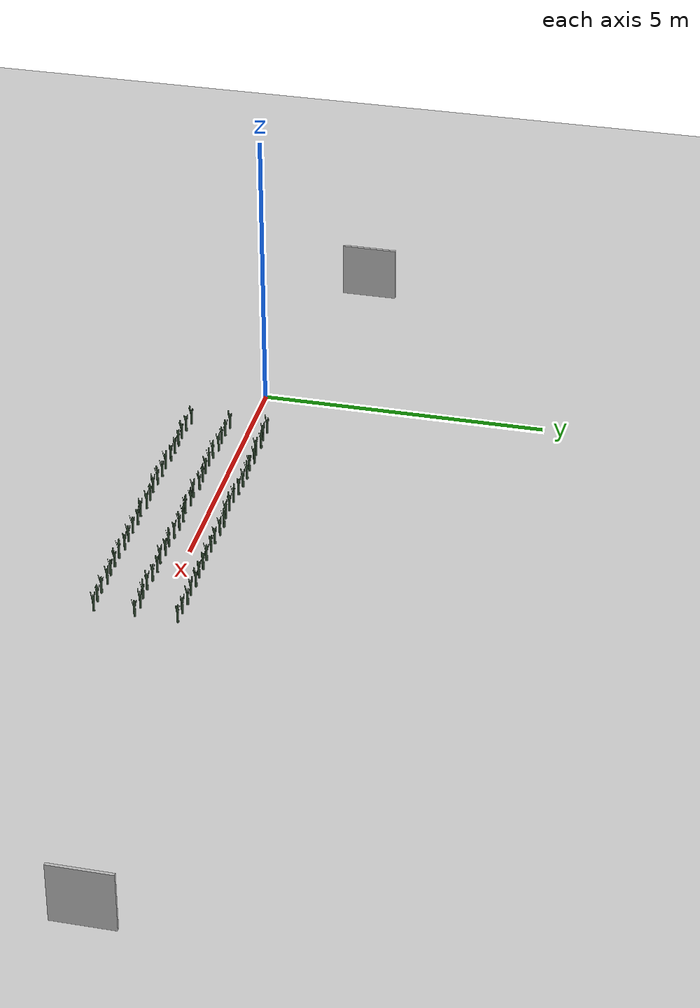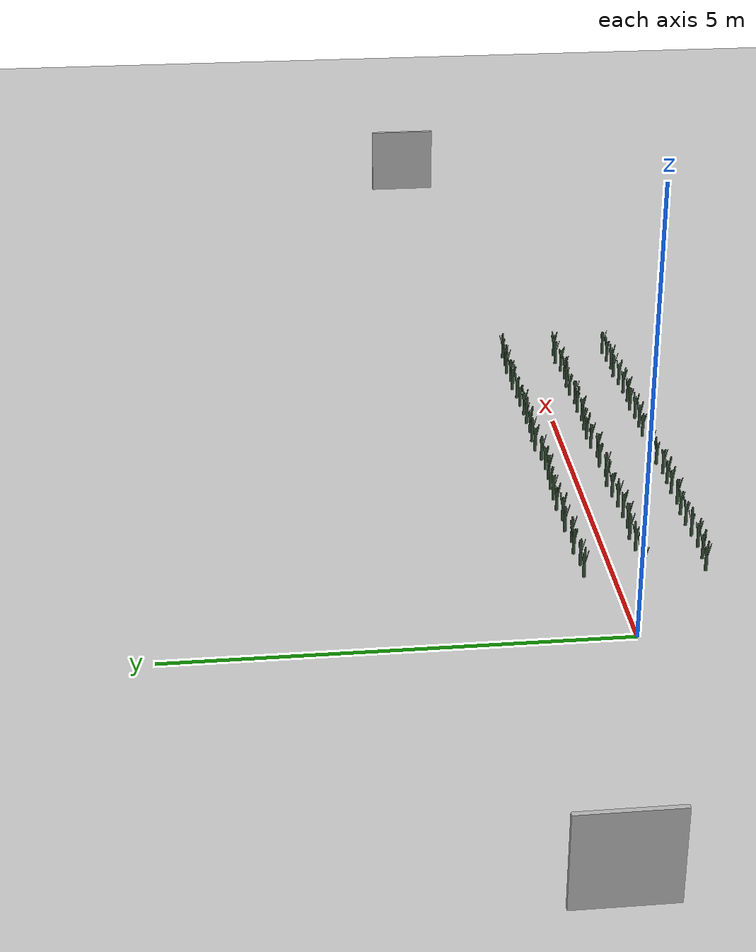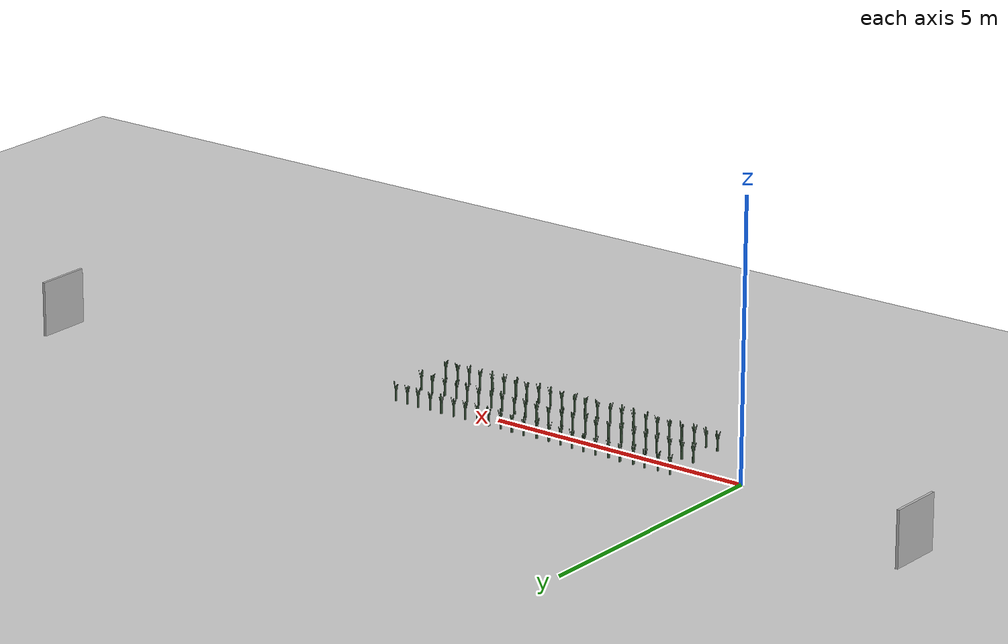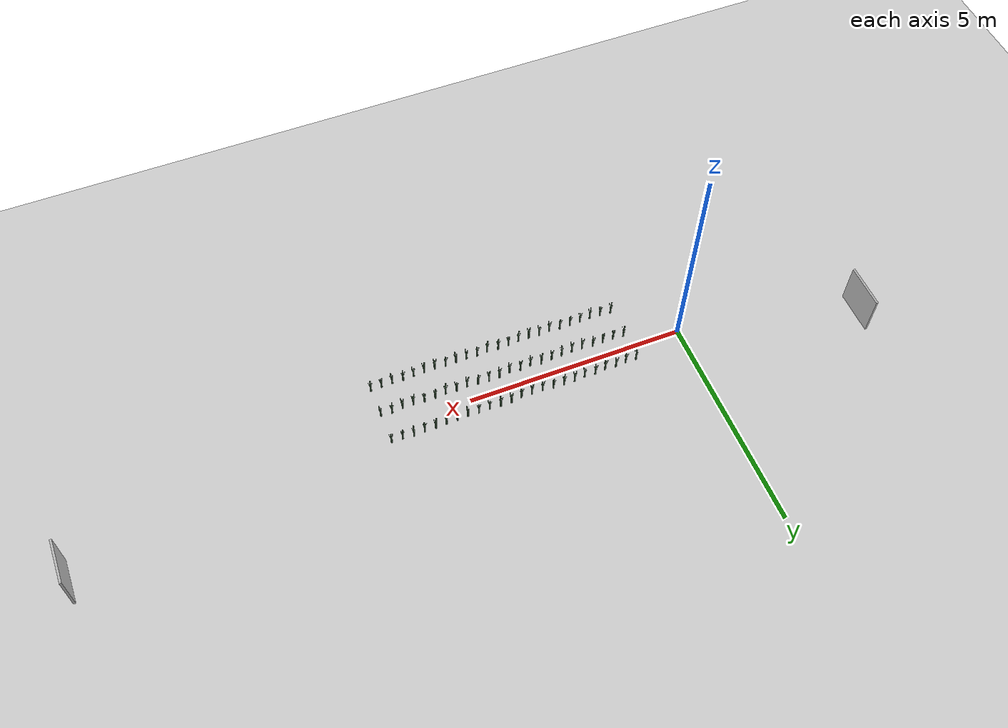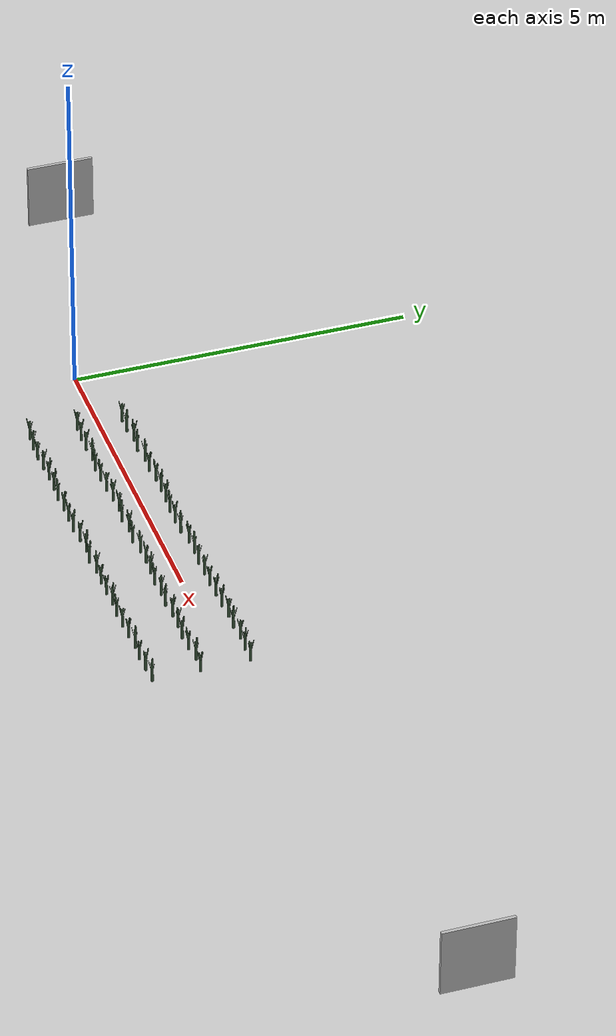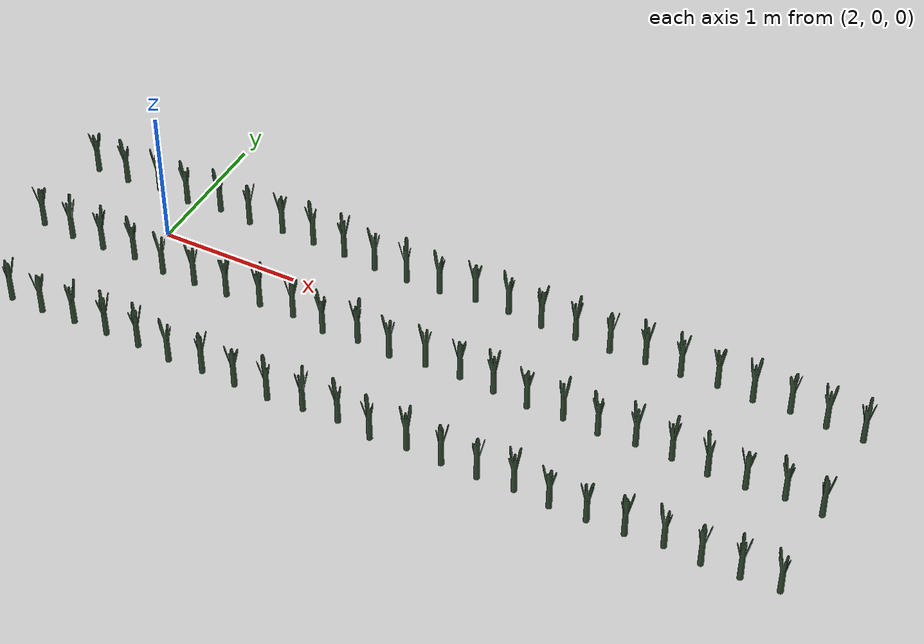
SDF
<sdf version="1.6">
 <world name="default">
  <light name="sun" type="directional">
   <pose>0 0 10 0 -0 0</pose>
   <diffuse>0.8 0.8 0.8 1</diffuse>
   <specular>0.1 0.1 0.1 1</specular>
   <attenuation>
    <range>1000</range>
    <constant>0.9</constant>
    <linear>0.01</linear>
    <quadratic>0.001</quadratic>
   </attenuation>
   <direction>0.9 0.5 -1</direction>
  </light>
  <include><uri>model://Sign</uri><pose>14 1 0 0 0 0</pose><static>1</static></include>
  <include><uri>model://Sign</uri><pose>-4 1 0 0 0 0</pose><static>1</static></include>
  <include><uri>model://dirt_plane</uri></include>
  <scene><background>160 210 255 1</background><ambient>100 100 100 1</ambient></scene>
  <include><uri>model://Leek</uri><pose>1.200000 0.338886 0.15 0 0 -2.000557</pose><static>0</static></include>
  <include><uri>model://Leek</uri><pose>1.450000 0.330409 0.15 0 0 -3.526339</pose><static>0</static></include>
  <include><uri>model://Leek</uri><pose>1.700000 0.358641 0.15 0 0 1.555358</pose><static>0</static></include>
  <include><uri>model://Leek</uri><pose>1.950000 0.331009 0.15 0 0 -3.418419</pose><static>0</static></include>
  <include><uri>model://Leek</uri><pose>2.200000 0.366336 0.15 0 0 2.940562</pose><static>0</static></include>
  <include><uri>model://Leek</uri><pose>2.450000 0.344066 0.15 0 0 -1.068157</pose><static>0</static></include>
  <include><uri>model://Leek</uri><pose>2.700000 0.369907 0.15 0 0 3.583285</pose><static>0</static></include>
  <include><uri>model://Leek</uri><pose>2.950000 0.363969 0.15 0 0 2.514465</pose><static>0</static></include>
  <include><uri>model://Leek</uri><pose>3.200000 0.353965 0.15 0 0 0.713680</pose><static>0</static></include>
  <include><uri>model://Leek</uri><pose>3.450000 0.332829 0.15 0 0 -3.090739</pose><static>0</static></include>
  <include><uri>model://Leek</uri><pose>3.700000 0.326324 0.15 0 0 -4.261597</pose><static>0</static></include>
  <include><uri>model://Leek</uri><pose>3.950000 0.331267 0.15 0 0 -3.371994</pose><static>0</static></include>
  <include><uri>model://Leek</uri><pose>4.200000 0.369270 0.15 0 0 3.468661</pose><static>0</static></include>
  <include><uri>model://Leek</uri><pose>4.450000 0.365990 0.15 0 0 2.878176</pose><static>0</static></include>
  <include><uri>model://Leek</uri><pose>4.700000 0.346027 0.15 0 0 -0.715149</pose><static>0</static></include>
  <include><uri>model://Leek</uri><pose>4.950000 0.348661 0.15 0 0 -0.241050</pose><static>0</static></include>
  <include><uri>model://Leek</uri><pose>5.200000 0.342444 0.15 0 0 -1.360123</pose><static>0</static></include>
  <include><uri>model://Leek</uri><pose>5.450000 0.353684 0.15 0 0 0.663090</pose><static>0</static></include>
  <include><uri>model://Leek</uri><pose>5.700000 0.353330 0.15 0 0 0.599355</pose><static>0</static></include>
  <include><uri>model://Leek</uri><pose>5.950000 0.372394 0.15 0 0 4.030942</pose><static>0</static></include>
  <include><uri>model://Leek</uri><pose>6.200000 0.356390 0.15 0 0 1.150264</pose><static>0</static></include>
  <include><uri>model://Leek</uri><pose>6.450000 0.374756 0.15 0 0 4.456143</pose><static>0</static></include>
  <include><uri>model://Leek</uri><pose>6.700000 0.354872 0.15 0 0 0.876919</pose><static>0</static></include>
  <include><uri>model://Leek</uri><pose>6.950000 0.349598 0.15 0 0 -0.072319</pose><static>0</static></include>
  <include><uri>model://Leek</uri><pose>1.200000 -0.327328 0.15 0 0 4.080955</pose><static>0</static></include>
  <include><uri>model://Leek</uri><pose>1.450000 -0.348385 0.15 0 0 0.290648</pose><static>0</static></include>
  <include><uri>model://Leek</uri><pose>1.700000 -0.348921 0.15 0 0 0.194130</pose><static>0</static></include>
  <include><uri>model://Leek</uri><pose>1.950000 -0.334145 0.15 0 0 2.853854</pose><static>0</static></include>
  <include><uri>model://Leek</uri><pose>2.200000 -0.367420 0.15 0 0 -3.135557</pose><static>0</static></include>
  <include><uri>model://Leek</uri><pose>2.450000 -0.366059 0.15 0 0 -2.890631</pose><static>0</static></include>
  <include><uri>model://Leek</uri><pose>2.700000 -0.359777 0.15 0 0 -1.759937</pose><static>0</static></include>
  <include><uri>model://Leek</uri><pose>2.950000 -0.340859 0.15 0 0 1.645439</pose><static>0</static></include>
  <include><uri>model://Leek</uri><pose>3.200000 -0.328337 0.15 0 0 3.899380</pose><static>0</static></include>
  <include><uri>model://Leek</uri><pose>3.450000 -0.369237 0.15 0 0 -3.462667</pose><static>0</static></include>
  <include><uri>model://Leek</uri><pose>3.700000 -0.340744 0.15 0 0 1.666055</pose><static>0</static></include>
  <include><uri>model://Leek</uri><pose>3.950000 -0.367073 0.15 0 0 -3.073055</pose><static>0</static></include>
  <include><uri>model://Leek</uri><pose>4.200000 -0.332471 0.15 0 0 3.155154</pose><static>0</static></include>
  <include><uri>model://Leek</uri><pose>4.450000 -0.329115 0.15 0 0 3.759366</pose><static>0</static></include>
  <include><uri>model://Leek</uri><pose>4.700000 -0.344708 0.15 0 0 0.952526</pose><static>0</static></include>
  <include><uri>model://Leek</uri><pose>4.950000 -0.366003 0.15 0 0 -2.880613</pose><static>0</static></include>
  <include><uri>model://Leek</uri><pose>5.200000 -0.352672 0.15 0 0 -0.481009</pose><static>0</static></include>
  <include><uri>model://Leek</uri><pose>5.450000 -0.370241 0.15 0 0 -3.643353</pose><static>0</static></include>
  <include><uri>model://Leek</uri><pose>5.700000 -0.345881 0.15 0 0 0.741421</pose><static>0</static></include>
  <include><uri>model://Leek</uri><pose>5.950000 -0.351260 0.15 0 0 -0.226845</pose><static>0</static></include>
  <include><uri>model://Leek</uri><pose>6.200000 -0.372340 0.15 0 0 -4.021220</pose><static>0</static></include>
  <include><uri>model://Leek</uri><pose>6.450000 -0.365359 0.15 0 0 -2.764575</pose><static>0</static></include>
  <include><uri>model://Leek</uri><pose>6.700000 -0.335516 0.15 0 0 2.607167</pose><static>0</static></include>
  <include><uri>model://Leek</uri><pose>6.950000 -0.356754 0.15 0 0 -1.215773</pose><static>0</static></include>
  <include><uri>model://Leek</uri><pose>1.200000 -1.027401 0.15 0 0 4.067773</pose><static>0</static></include>
  <include><uri>model://Leek</uri><pose>1.450000 -1.053913 0.15 0 0 -0.704283</pose><static>0</static></include>
  <include><uri>model://Leek</uri><pose>1.700000 -1.062691 0.15 0 0 -2.284462</pose><static>0</static></include>
  <include><uri>model://Leek</uri><pose>1.950000 -1.050883 0.15 0 0 -0.159000</pose><static>0</static></include>
  <include><uri>model://Leek</uri><pose>2.200000 -1.045802 0.15 0 0 0.755718</pose><static>0</static></include>
  <include><uri>model://Leek</uri><pose>2.450000 -1.046028 0.15 0 0 0.715011</pose><static>0</static></include>
  <include><uri>model://Leek</uri><pose>2.700000 -1.067697 0.15 0 0 -3.185429</pose><static>0</static></include>
  <include><uri>model://Leek</uri><pose>2.950000 -1.055246 0.15 0 0 -0.944354</pose><static>0</static></include>
  <include><uri>model://Leek</uri><pose>3.200000 -1.064250 0.15 0 0 -2.565077</pose><static>0</static></include>
  <include><uri>model://Leek</uri><pose>3.450000 -1.071708 0.15 0 0 -3.907383</pose><static>0</static></include>
  <include><uri>model://Leek</uri><pose>3.700000 -1.048773 0.15 0 0 0.220819</pose><static>0</static></include>
  <include><uri>model://Leek</uri><pose>3.950000 -1.035815 0.15 0 0 2.553298</pose><static>0</static></include>
  <include><uri>model://Leek</uri><pose>4.200000 -1.071525 0.15 0 0 -3.874565</pose><static>0</static></include>
  <include><uri>model://Leek</uri><pose>4.450000 -1.042524 0.15 0 0 1.345623</pose><static>0</static></include>
  <include><uri>model://Leek</uri><pose>4.700000 -1.056296 0.15 0 0 -1.133334</pose><static>0</static></include>
  <include><uri>model://Leek</uri><pose>4.950000 -1.057578 0.15 0 0 -1.364050</pose><static>0</static></include>
  <include><uri>model://Leek</uri><pose>5.200000 -1.044492 0.15 0 0 0.991394</pose><static>0</static></include>
  <include><uri>model://Leek</uri><pose>5.450000 -1.066626 0.15 0 0 -2.992668</pose><static>0</static></include>
  <include><uri>model://Leek</uri><pose>5.700000 -1.062788 0.15 0 0 -2.301794</pose><static>0</static></include>
  <include><uri>model://Leek</uri><pose>5.950000 -1.055455 0.15 0 0 -0.981967</pose><static>0</static></include>
  <include><uri>model://Leek</uri><pose>6.200000 -1.034433 0.15 0 0 2.802049</pose><static>0</static></include>
  <include><uri>model://Leek</uri><pose>6.450000 -1.057870 0.15 0 0 -1.416641</pose><static>0</static></include>
  <include><uri>model://Leek</uri><pose>6.700000 -1.048015 0.15 0 0 0.357308</pose><static>0</static></include>
  <include><uri>model://Leek</uri><pose>6.950000 -1.034979 0.15 0 0 2.703739</pose><static>0</static></include>
 </world>
</sdf>

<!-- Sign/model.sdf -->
<sdf version='1.6'>
  <model name='Sign'>
    <link name='link'>
      <pose frame=''>0 0 0 0 -0 0</pose>
      <inertial>
        <mass>1</mass>
        <inertia>
          <ixx>0.166667</ixx>
          <ixy>0</ixy>
          <ixz>0</ixz>
          <iyy>0.166667</iyy>
          <iyz>0</iyz>
          <izz>0.166667</izz>
        </inertia>
        <pose frame=''>0 0 0 0 -0 0</pose>
      </inertial>
      <self_collide>0</self_collide>
      <kinematic>0</kinematic>
      <gravity>1</gravity>
      <visual name='visual'>
        <geometry>
          <box>
            <size>1 0.05 1</size>
          </box>
        </geometry>
        <material>
          <script>
            <uri>model://ground_plane/materials/scripts/my_ground_plane.material</uri>
            <uri>model://ground_plane/materials/textures</uri>
            <name>my_ground_plane/NaioLogo</name>
          </script>
        </material>
        <pose frame=''>0 0 0.5 0 -0 1.57</pose>
        <cast_shadows>1</cast_shadows>
        <transparency>0</transparency>
      </visual>
    </link>
    <static>1</static>
    <allow_auto_disable>1</allow_auto_disable>
  </model>
</sdf>

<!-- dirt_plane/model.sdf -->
<sdf version="1.4">
<model name="dirt_plane">
  <static>true</static>
    <link name="link">
      <collision name="collision">
        <geometry>
          <plane>
            <normal>0 0 1</normal>
            <size>100 100</size>
          </plane>
        </geometry>
        <surface>
          <friction>
            <ode>
              <mu>100</mu>
              <mu2>50</mu2>
            </ode>
          </friction>
        </surface>
      </collision>
      <visual name="visual">
        <cast_shadows>false</cast_shadows>
        <geometry>
          <plane>
            <normal>0 0 1</normal>
            <size>100 100</size>
          </plane>
        </geometry>
        <material>
          <script>
            <uri>model://ground_plane/materials/scripts/my_ground_plane.material</uri>
            <uri>model://ground_plane/materials/textures</uri>
            <name>my_ground_plane/Dirt</name>
          </script>
        </material>
      </visual>
    </link>
  </model>
</sdf>

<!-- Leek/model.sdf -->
<sdf version='1.6'>
  <model name='Leek'>
    <link name='link'>
      <pose frame=''>0 0 0 0 -0 0</pose>
      <inertial>
        <mass>1</mass>
        <inertia>
          <ixx>0.145833</ixx>
          <ixy>0</ixy>
          <ixz>0</ixz>
          <iyy>0.145833</iyy>
          <iyz>0</iyz>
          <izz>0.125</izz>
        </inertia>
        <pose frame=''>0 0 0 0 -0 0</pose>
      </inertial>
      <self_collide>0</self_collide>
      <kinematic>0</kinematic>
      <gravity>1</gravity>
      <visual name='visual'>
        <geometry>
          <mesh>
            <uri>model://Leek/Poireau.dae</uri>
            <scale>1 1 1</scale>
          </mesh>
        </geometry>
        <material>
          <script>
            <name>Gazebo/Grey</name>
            <uri>file://media/materials/scripts/gazebo.material</uri>
          </script>
          <ambient>0.3 0.7 0.4 0</ambient>
          <diffuse>0.2 0.3 0.2 0</diffuse>
          <specular>0 0 0 1</specular>
          <emissive>0 0 0 1</emissive>
          <shader type='vertex'>
            <normal_map>__default__</normal_map>
          </shader>
        </material>
        <pose frame=''>0 0 -0.08 0 -0 0</pose>
        <cast_shadows>1</cast_shadows>
        <transparency>0</transparency>
      </visual>
      <collision name='collision'>
        <laser_retro>0</laser_retro>
        <max_contacts>10</max_contacts>
        <pose frame=''>0 0 0 0 -0 0</pose>
        <geometry>
          <cylinder>
            <radius>0.02</radius>
            <length>0.25</length>
          </cylinder>
        </geometry>
        <surface>
          <friction>
            <ode>
              <mu>1</mu>
              <mu2>1</mu2>
              <fdir1>0 0 0</fdir1>
              <slip1>0</slip1>
              <slip2>0</slip2>
            </ode>
            <torsional>
              <coefficient>1</coefficient>
              <patch_radius>0</patch_radius>
              <surface_radius>0</surface_radius>
              <use_patch_radius>1</use_patch_radius>
              <ode>
                <slip>0</slip>
              </ode>
            </torsional>
          </friction>
          <bounce>
            <restitution_coefficient>0</restitution_coefficient>
            <threshold>1e+06</threshold>
          </bounce>
          <contact>
            <collide_without_contact>0</collide_without_contact>
            <collide_without_contact_bitmask>1</collide_without_contact_bitmask>
            <collide_bitmask>1</collide_bitmask>
            <ode>
              <soft_cfm>0</soft_cfm>
              <soft_erp>0.2</soft_erp>
              <kp>1e+13</kp>
              <kd>1</kd>
              <max_vel>0.01</max_vel>
              <min_depth>0</min_depth>
            </ode>
            <bullet>
              <split_impulse>1</split_impulse>
              <split_impulse_penetration_threshold>-0.01</split_impulse_penetration_threshold>
              <soft_cfm>0</soft_cfm>
              <soft_erp>0.2</soft_erp>
              <kp>1e+13</kp>
              <kd>1</kd>
            </bullet>
          </contact>
        </surface>
      </collision>
    </link>
    <static>0</static>
    <allow_auto_disable>1</allow_auto_disable>
  </model>
</sdf>
